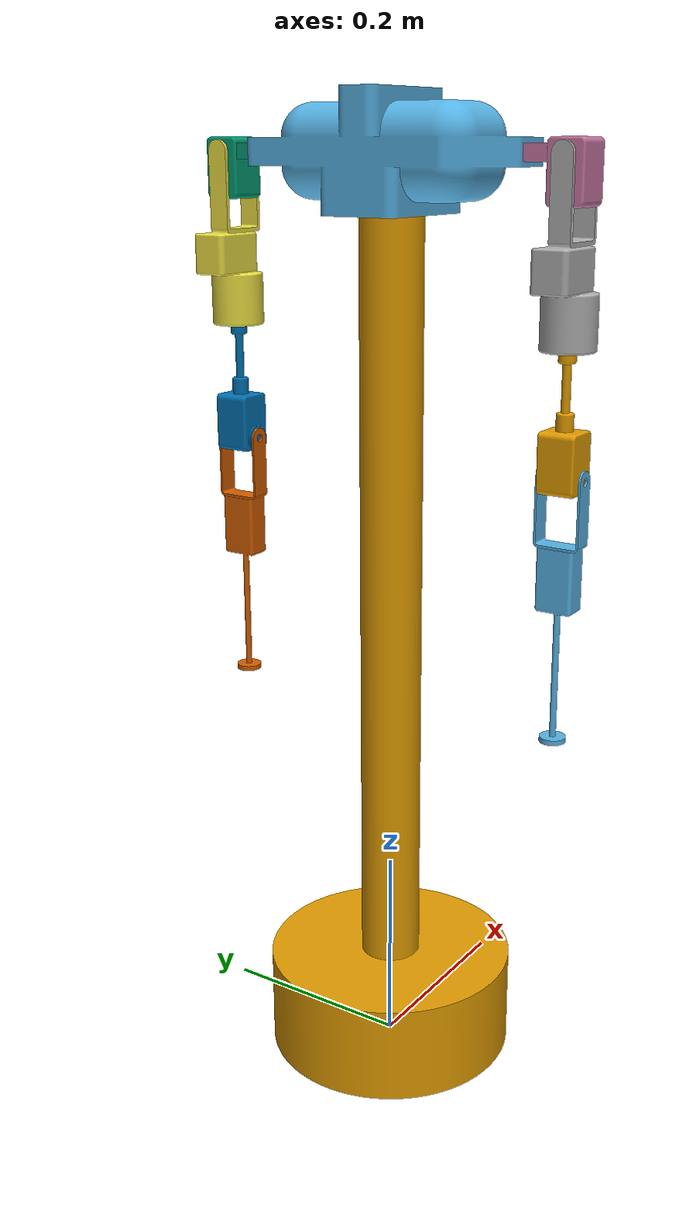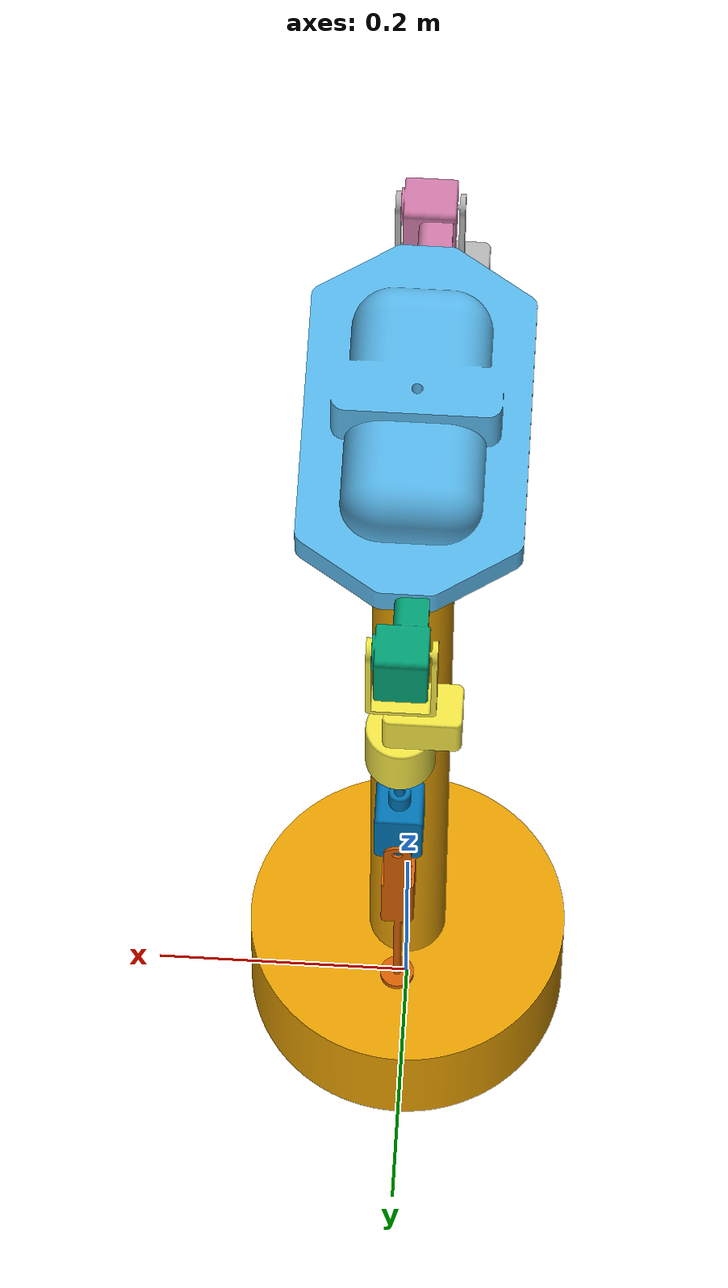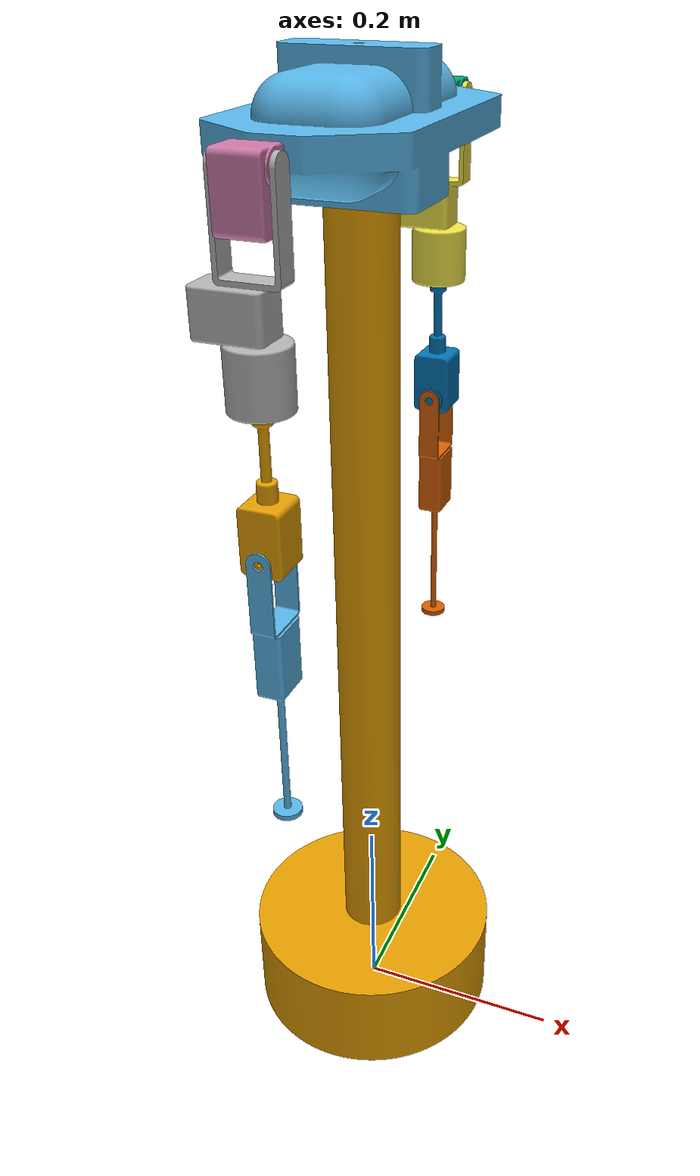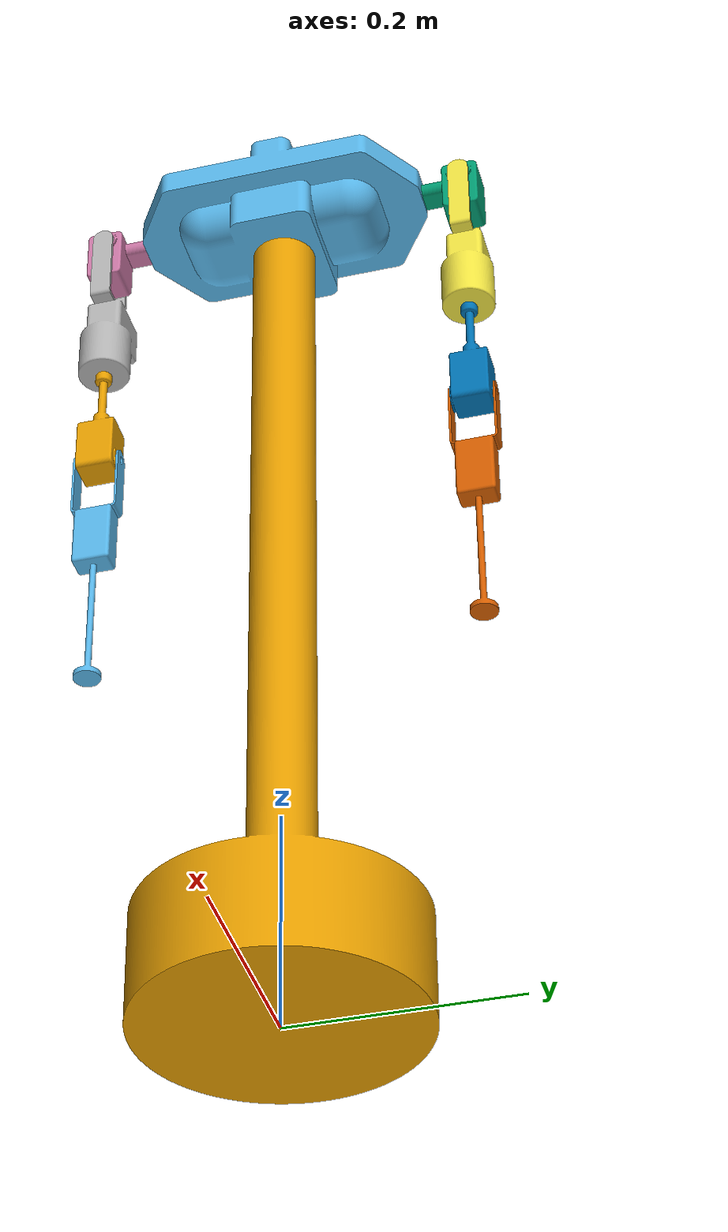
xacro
<?xml version="1.0"?>

<robot name="LiCAS_A1" xmlns:xacro="http://ros.org/wiki/xacro">

<!-- Import Transmissions -->
<xacro:include filename="$(find licasa1_description)/urdf/licasa1.transmission.xacro" />

<!-- Import Gazebo plugins -->
<xacro:include filename="$(find licasa1_description)/gazebo/gazebo.urdf.xacro"/>

<!-- Params -->
<xacro:property name="joint_damping" value="0.0" />
<xacro:property name="joint_friction" value="0.0" />

<link name="base_link">
    <inertial>
      <origin xyz="0 0 0.178212"/>
      <mass value="19.049"/>
      <inertia ixx="1.059" ixy="0" ixz="0" iyy="1.059" iyz="0" izz="0.107"/>
    </inertial>
    <visual>
      <origin xyz="0 0 0.85"/>
      <geometry>
        <mesh filename="package://licasa1_description/mesh/Arms_Base.dae" scale=".001 .001 .001"/>
      </geometry>
    </visual>
    <collision>
      <origin xyz="0 0 0.85"/>
      <geometry>
        <mesh filename="package://licasa1_description/mesh/Arms_Base.dae" scale=".001 .001 .001"/>
      </geometry>
    </collision>
</link>

<joint name="joint" type="fixed">
    <origin xyz="0 0 0.85"/>
    <parent link="base_link"/>
    <child link="shoulder_pitch_link"/>
</joint>

<link name="shoulder_pitch_link">
    <inertial>
      <origin xyz="0 0 0.042"/>
      <mass value="0.639"/>
      <inertia ixx="3.02e-3" ixy="0" ixz="0" iyy="8.64e-4" iyz="0" izz="3.39e-3"/>
    </inertial>
    <visual>
      <origin xyz="0 0 0.054"/>
      <geometry>
        <mesh filename="package://licasa1_description/mesh/Shoulder_Pitch_Structure.dae" scale=".001 .001 .001"/>
      </geometry>
    </visual>
    <collision>
      <origin xyz="0 0 0.054"/>
      <geometry>
        <mesh filename="package://licasa1_description/mesh/Shoulder_Pitch_Structure.dae" scale=".001 .001 .001"/>
      </geometry>
    </collision>
</link>

<!-- LEFT ARM-->

<joint name="LiCAS_A1_q1_1" type="revolute">
    <origin xyz="0 0.14 0.054"/>
    <parent link="shoulder_pitch_link"/>
    <child link="left_shoulder_roll"/>
    <axis xyz="0 1 0"/>
    <dynamics damping="${joint_damping}" friction="${joint_friction}"/>
    <limit effort="10.0" lower="${-90/180*pi}" upper="${90/180*pi}" velocity="6"/>
</joint>

<link name="left_shoulder_roll">
    <inertial>
      <origin xyz="0 0.0164 -0.00946"/>
      <mass value="0.233"/>
      <inertia ixx="3.68e-4" ixy="-7.57e-6" ixz="5.38e-6" iyy="1.16e-4" iyz="-4.8e-5" izz="3.76e-4"/>
    </inertial>
    <visual>
      <origin xyz="0 0.04 0"/>
      <geometry>
        <mesh filename="package://licasa1_description/mesh/Shoulder_Roll_Structure_Left.dae" scale=".001 .001 .001"/>
      </geometry>
    </visual>
    <collision>
      <origin xyz="0 0.04 0"/>
      <geometry>
        <mesh filename="package://licasa1_description/mesh/Shoulder_Roll_Structure_Left.dae" scale=".001 .001 .001"/>
      </geometry>
    </collision>
</link>

<joint name="LiCAS_A1_q1_2" type="revolute">
    <origin xyz="0 0.04 0"/>
    <parent link="left_shoulder_roll"/>
    <child link="left_shoulder_yaw"/>
    <axis xyz="1 0 0"/>
    <dynamics damping="${joint_damping}" friction="${joint_friction}"/>
    <limit effort="10.0" lower="${-20/180*pi}" upper="${90/180*pi}" velocity="6"/>
</joint>

<link name="left_shoulder_yaw">
    <inertial>
      <origin xyz="-0.015 0 -0.1"/>
      <mass value="0.246"/>
      <inertia ixx="3.49e-4" ixy="0" ixz="-3.79e-5" iyy="4.46e-4" iyz="0" izz="1.49e-4"/>
    </inertial>
    <visual>
      <origin xyz="0 0 0"/>
      <geometry>
        <mesh filename="package://licasa1_description/mesh/Assembly_Shoulder_Yaw_Structure.dae" scale=".001 .001 .001"/>
      </geometry>
    </visual>
    <collision>
      <origin xyz="0 0 0"/>
      <geometry>
        <mesh filename="package://licasa1_description/mesh/Assembly_Shoulder_Yaw_Structure.dae" scale=".001 .001 .001"/>
      </geometry>
    </collision>
</link>

<joint name="LiCAS_A1_q1_3" type="revolute">
    <origin xyz="0 0 -0.143"/>
    <parent link="left_shoulder_yaw"/>
    <child link="left_elbow_pitch"/>
    <axis xyz="0 0 1"/>
    <dynamics damping="${joint_damping}" friction="${joint_friction}"/>
    <limit effort="10.0" lower="${-90/180*pi}" upper="${90/180*pi}" velocity="6"/>
</joint>

<link name="left_elbow_pitch">
    <inertial>
      <origin xyz="0 0 -0.093"/>
      <mass value="0.214"/>
      <inertia ixx="4.21e-4" ixy="-7.81e-7" ixz="-4.06e-5" iyy="4.26e-4" iyz="1.8e-5" izz="5.01e-5"/>
    </inertial>
    <visual>
      <origin xyz="0 0 -0.132"/>
      <geometry>
        <mesh filename="package://licasa1_description/mesh/Elbow_Pitch_Structure_Left_Cut.dae" scale=".001 .001 .001"/>
      </geometry>
    </visual>
    <collision>
      <origin xyz="0 0 -0.132"/>
      <geometry>
        <mesh filename="package://licasa1_description/mesh/Elbow_Pitch_Structure_Left_Cut.dae" scale=".001 .001 .001"/>
      </geometry>
    </collision>
</link>

<joint name="LiCAS_A1_q1_4" type="revolute">
    <origin xyz="0 0 -0.132"/>
    <parent link="left_elbow_pitch"/>
    <child link="left_forearm_link"/>
    <axis xyz="0 1 0"/>
    <dynamics damping="${joint_damping}" friction="${joint_friction}"/>
    <limit effort="10.0" lower="${-150/180*pi}" upper="${150/180*pi}" velocity="6"/>
</joint>

<link name="left_forearm_link">
    <inertial>
      <origin xyz="0 0 -0.092"/>
      <mass value="0.106"/>
      <inertia ixx="3.94e-4" ixy="0" ixz="0" iyy="3.75e-4" iyz="-3.5e-6" izz="3.05e-5"/>
    </inertial>
    <visual>
      <origin xyz="0 0 0"/>
      <geometry>
        <mesh filename="package://licasa1_description/mesh/Forearm_Link_with_Gripper_Servo.dae" scale=".001 .001 .001"/>
      </geometry>
    </visual>
    <collision>
      <origin xyz="0 0 0"/>
      <geometry>
        <mesh filename="package://licasa1_description/mesh/Forearm_Link_with_Gripper_Servo.dae" scale=".001 .001 .001"/>
      </geometry>
    </collision>
</link>

<!-- RIGHT ARM-->

<joint name="LiCAS_A1_q2_1" type="revolute">
    <origin xyz="0 -0.14 0.054"/>
    <parent link="shoulder_pitch_link"/>
    <child link="right_shoulder_roll"/>
    <axis xyz="0 1 0"/>
    <dynamics damping="${joint_damping}" friction="${joint_friction}"/>
    <limit effort="10.0" lower="${-90/180*pi}" upper="${90/180*pi}" velocity="6"/>
</joint>

<link name="right_shoulder_roll">
    <inertial>
      <origin xyz="0 -0.0164 -0.00946"/>
      <mass value="0.233"/>
      <inertia ixx="3.68e-4" ixy="7.57e-6" ixz="5.38e-6" iyy="1.16e-4" iyz="4.8e-5" izz="3.76e-4"/>
    </inertial>
    <visual>
      <origin xyz="0 -0.04 0"/>
      <geometry>
        <mesh filename="package://licasa1_description/mesh/Shoulder_Roll_Structure_Right.dae" scale=".001 .001 .001"/>
      </geometry>
    </visual>
    <collision>
      <origin xyz="0 -0.04 0"/>
      <geometry>
        <mesh filename="package://licasa1_description/mesh/Shoulder_Roll_Structure_Right.dae" scale=".001 .001 .001"/>
      </geometry>
    </collision>
</link>

<joint name="LiCAS_A1_q2_2" type="revolute">
    <origin xyz="0 -0.04 0"/>
    <parent link="right_shoulder_roll"/>
    <child link="right_shoulder_yaw"/>
    <axis xyz="1 0 0"/>
    <dynamics damping="${joint_damping}" friction="${joint_friction}"/>
    <limit effort="10.0" lower="${-90/180*pi}" upper="${20/180*pi}" velocity="6"/>
</joint>

<link name="right_shoulder_yaw">
    <inertial>
      <origin xyz="-0.015 0 -0.1"/>
      <mass value="0.246"/>
      <inertia ixx="3.49e-4" ixy="0" ixz="-3.79e-5" iyy="4.46e-4" iyz="0" izz="1.49e-4"/>
    </inertial>
    <visual>
      <origin xyz="0 0 0"/>
      <geometry>
        <mesh filename="package://licasa1_description/mesh/Assembly_Shoulder_Yaw_Structure.dae" scale=".001 .001 .001"/>
      </geometry>
    </visual>
    <collision>
      <origin xyz="0 0 0"/>
      <geometry>
        <mesh filename="package://licasa1_description/mesh/Assembly_Shoulder_Yaw_Structure.dae" scale=".001 .001 .001"/>
      </geometry>
    </collision>
</link>

<joint name="LiCAS_A1_q2_3" type="revolute">
    <origin xyz="0 0 -0.143"/>
    <parent link="right_shoulder_yaw"/>
    <child link="right_elbow_pitch"/>
    <axis xyz="0 0 1"/>
    <dynamics damping="${joint_damping}" friction="${joint_friction}"/>
    <limit effort="10.0" lower="${-90/180*pi}" upper="${90/180*pi}" velocity="6"/>
</joint>

<link name="right_elbow_pitch">
    <inertial>
      <origin xyz="0 0 -0.093"/>
      <mass value="0.214"/>
      <inertia ixx="4.21e-4" ixy="7.81e-7" ixz="-4.06e-5" iyy="4.26e-4" iyz="-1.8e-5" izz="5.01e-5"/>
    </inertial>
    <visual>
      <origin xyz="0 0 -0.132"/>
      <geometry>
        <mesh filename="package://licasa1_description/mesh/Elbow_Pitch_Structure_Right_Cut.dae" scale=".001 .001 .001"/>
      </geometry>
    </visual>
    <collision>
      <origin xyz="0 0 -0.132"/>
      <geometry>
        <mesh filename="package://licasa1_description/mesh/Elbow_Pitch_Structure_Right_Cut.dae" scale=".001 .001 .001"/>
      </geometry>
    </collision>
</link>

<joint name="LiCAS_A1_q2_4" type="revolute">
    <origin xyz="0 0 -0.132"/>
    <parent link="right_elbow_pitch"/>
    <child link="right_forearm_link"/>
    <axis xyz="0 1 0"/>
    <dynamics damping="${joint_damping}" friction="${joint_friction}"/>
    <limit effort="10.0" lower="${-150/180*pi}" upper="${150/180*pi}" velocity="6"/>
</joint>

<link name="right_forearm_link">
    <inertial>
      <origin xyz="0 0 -0.092"/>
      <mass value="0.106"/>
      <inertia ixx="3.94e-4" ixy="0" ixz="0" iyy="3.75e-4" iyz="3.5e-6" izz="3.05e-5"/>
    </inertial>
    <visual>
      <origin xyz="0 0 0"/>
      <geometry>
        <mesh filename="package://licasa1_description/mesh/Forearm_Link_with_Gripper_Servo.dae" scale=".001 .001 .001"/>
      </geometry>
    </visual>
    <collision>
      <origin xyz="0 0 0"/>
      <geometry>
        <mesh filename="package://licasa1_description/mesh/Forearm_Link_with_Gripper_Servo.dae" scale=".001 .001 .001"/>
      </geometry>
    </collision>
</link>

<xacro:LiCAS_A1_transmission name="LiCAS_A1" hardware_interface="hardware_interface/EffortJointInterface"/>

</robot>
